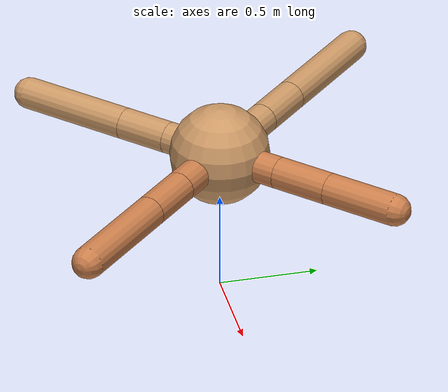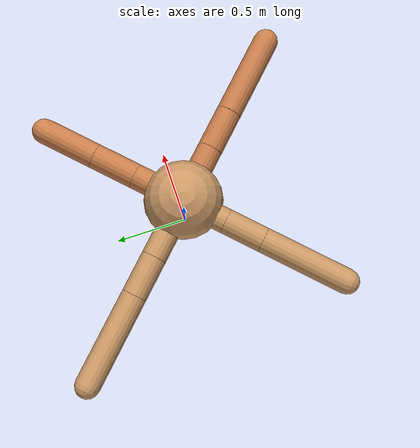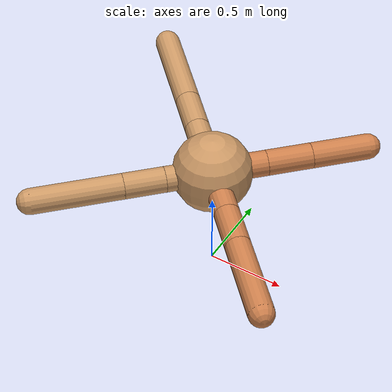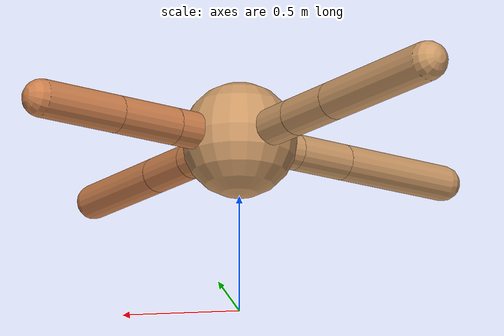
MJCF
<mujoco model="ant">
  <compiler angle="degree" coordinate="local" inertiafromgeom="true" />
  <option integrator="RK4" timestep="0.01" />
  <custom>
    <numeric data="0.0 0.0 0.55 1.0 0.0 0.0 0.0 0.0 1.0 0.0 -1.0 0.0 -1.0 0.0 1.0" name="init_qpos" />
  </custom>
  <default>
    <joint armature="1" damping="1" limited="true" />
    <geom conaffinity="0" condim="3" density="5.0" friction="1.5 0.1 0.1" margin="0.01" rgba="0.8 0.6 0.4 1" />
  </default>
  <worldbody>
    <body name="torso" pos="0 0 0.75">
      <geom name="torso_geom" pos="0 0 0" size="0.25" type="sphere" />

      <body name="front_left_leg" pos="0 0 0">
        <geom fromto="0.0 0.0 0.0 0.23974169193670788 0.23974169193670788 0.0" name="aux_1_geom" size="0.08" type="capsule" rgba=".8 .5 .3 1" />
        <body name="aux_1" pos="0.23974169193670788 0.23974169193670788 0.0">
          <joint axis="0 0 1" name="hip_1" pos="0.0 0.0 0.0" range="-40 40" type="hinge" />
          <geom fromto="0.0 0.0 0.0 0.20132448844893105 0.20132448844893105 0.0" name="left_leg_geom" size="0.08" type="capsule" rgba=".8 .5 .3 1" />
          <body pos="0.20132448844893105 0.20132448844893105 0.0" name="front_left_foot">
            <joint axis="-1 1 0" name="ankle_1" pos="0.0 0.0 0.0" range="30 100" type="hinge" />
            <geom fromto="0.0 0.0 0.0 0.2572716403167898 0.2572716403167898 0.0" name="left_ankle_geom" size="0.08" type="capsule" rgba=".8 .5 .3 1" />
          </body>
        </body>
      </body>
      <body name="front_right_leg" pos="0 0 0">
        <geom fromto="0.0 0.0 0.0 -0.2840957247075195 0.2840957247075195 0.0" name="aux_2_geom" size="0.08" type="capsule" />
        <body name="aux_2" pos="-0.2840957247075195 0.2840957247075195 0.0">
          <joint axis="0 0 1" name="hip_2" pos="0.0 0.0 0.0" range="-40 40" type="hinge" />
          <geom fromto="0.0 0.0 0.0 -0.18634482909599437 0.18634482909599437 0.0" name="right_leg_geom" size="0.08" type="capsule" />
          <body pos="-0.18634482909599437 0.18634482909599437 0.0" name="front_right_foot">
            <joint axis="1 1 0" name="ankle_2" pos="0.0 0.0 0.0" range="-100 -30" type="hinge" />
            <geom fromto="0.0 0.0 0.0 -0.42754283288700945 0.42754283288700945 0.0" name="right_ankle_geom" size="0.08" type="capsule" />
          </body>
        </body>
      </body>
      <body name="left_back_leg" pos="0 0 0">
        <geom fromto="0.0 0.0 0.0 -0.20913223047527962 -0.20913223047527962 0.0" name="aux_3_geom" size="0.08" type="capsule" />
        <body name="aux_3" pos="-0.20913223047527962 -0.20913223047527962 0.0">
          <joint axis="0 0 1" name="hip_3" pos="0.0 0.0 0.0" range="-40 40" type="hinge" />
          <geom fromto="0.0 0.0 0.0 -0.18247357670548373 -0.18247357670548373 0.0" name="back_leg_geom" size="0.08" type="capsule" />
          <body pos="-0.18247357670548373 -0.18247357670548373 0.0" name="left_back_foot">
            <joint axis="-1 1 0" name="ankle_3" pos="0.0 0.0 0.0" range="-100 -30" type="hinge" />
            <geom fromto="0.0 0.0 0.0 -0.40309018125893437 -0.40309018125893437 0.0" name="third_ankle_geom" size="0.08" type="capsule" />
          </body>
        </body>
      </body>
      <body name="right_back_leg" pos="0 0 0">
        <geom fromto="0.0 0.0 0.0 0.26100286105381043 -0.26100286105381043 0.0" name="aux_4_geom" size="0.08" type="capsule" rgba=".8 .5 .3 1" />
        <body name="aux_4" pos="0.26100286105381043 -0.26100286105381043 0.0">
          <joint axis="0 0 1" name="hip_4" pos="0.0 0.0 0.0" range="-40 40" type="hinge" />
          <geom fromto="0.0 0.0 0.0 0.18928678499072746 -0.18928678499072746 0.0" name="rightback_leg_geom" size="0.08" type="capsule" rgba=".8 .5 .3 1" />
          <body pos="0.18928678499072746 -0.18928678499072746 0.0" name="right_back_foot">
            <joint axis="1 1 0" name="ankle_4" pos="0.0 0.0 0.0" range="30 100" type="hinge" />
            <geom fromto="0.0 0.0 0.0 0.3781528335572144 -0.3781528335572144 0.0" name="fourth_ankle_geom" size="0.08" type="capsule" rgba=".8 .5 .3 1" />
          </body>
        </body>
      </body>
    </body>
  </worldbody>
  <actuator>
    <motor ctrllimited="true" ctrlrange="-1.0 1.0" joint="hip_4" gear="150" />
    <motor ctrllimited="true" ctrlrange="-1.0 1.0" joint="ankle_4" gear="150" />
    <motor ctrllimited="true" ctrlrange="-1.0 1.0" joint="hip_1" gear="150" />
    <motor ctrllimited="true" ctrlrange="-1.0 1.0" joint="ankle_1" gear="150" />
    <motor ctrllimited="true" ctrlrange="-1.0 1.0" joint="hip_2" gear="150" />
    <motor ctrllimited="true" ctrlrange="-1.0 1.0" joint="ankle_2" gear="150" />
    <motor ctrllimited="true" ctrlrange="-1.0 1.0" joint="hip_3" gear="150" />
    <motor ctrllimited="true" ctrlrange="-1.0 1.0" joint="ankle_3" gear="150" />
  </actuator>
</mujoco>
